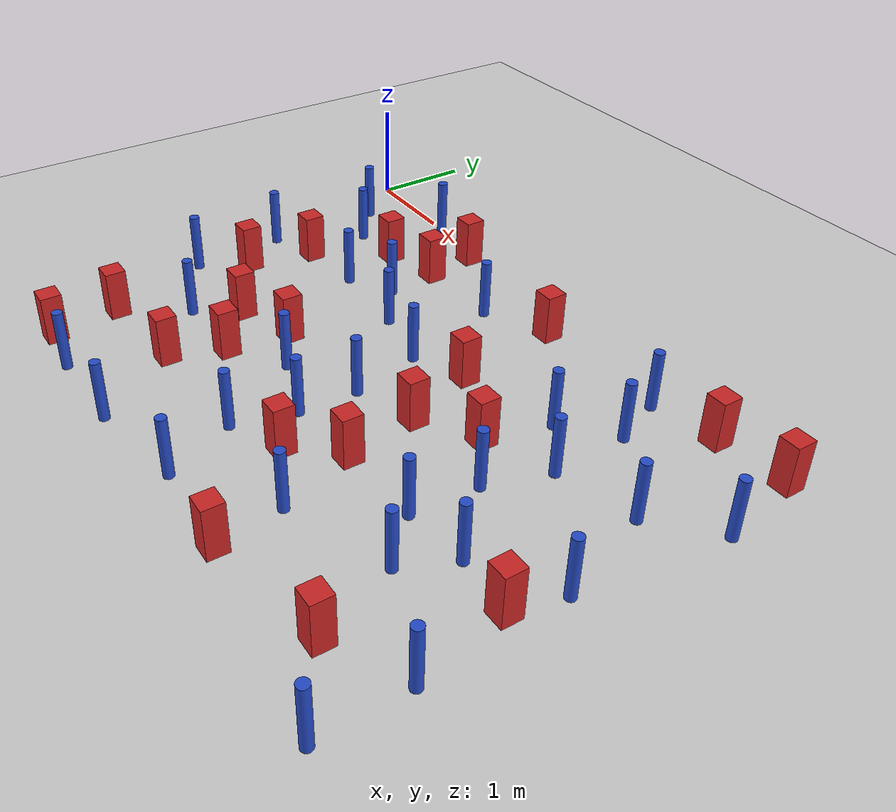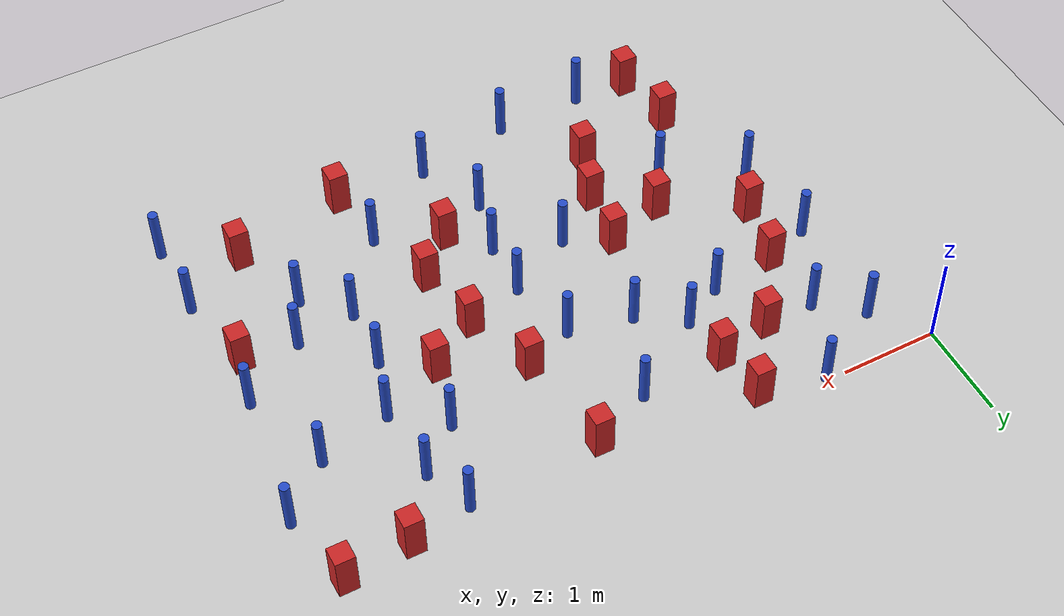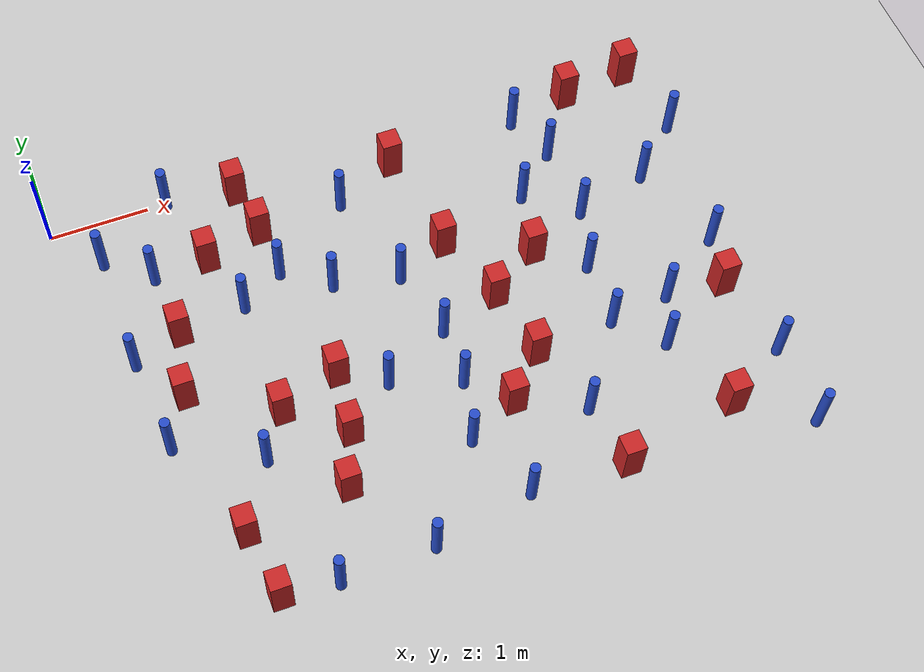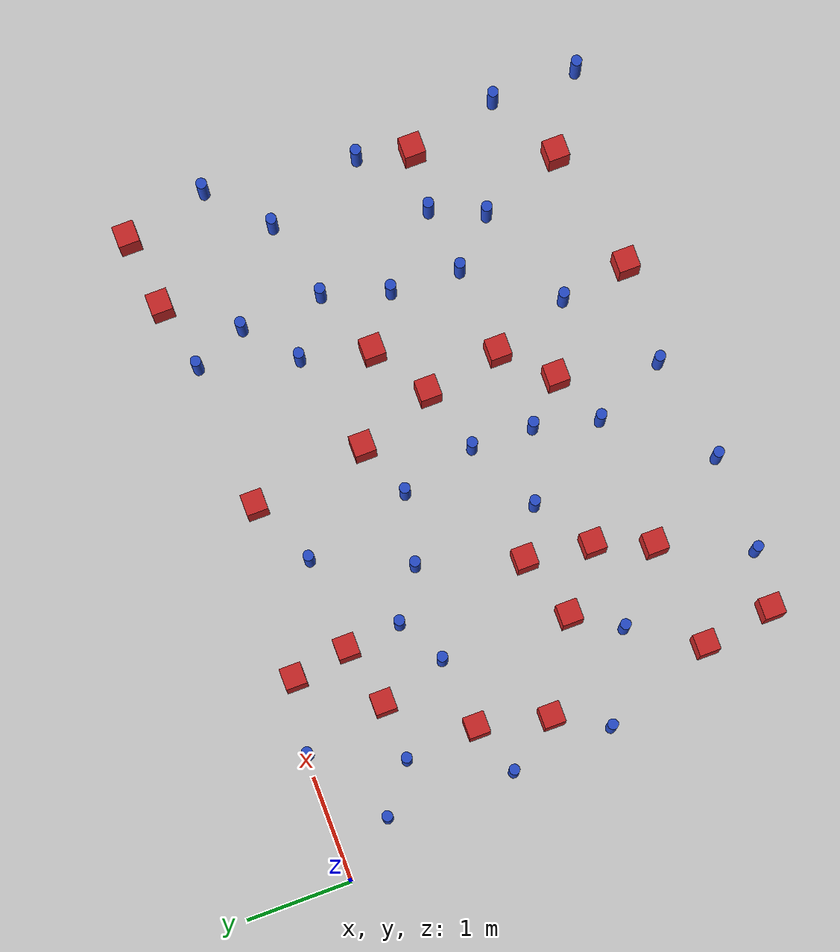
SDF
<sdf version="1.6">
 <world name="default">
  <model name="ground_plane">
   <static>1</static>
   <link name="link">
    <collision name="collision">
     <geometry><plane><normal>0 0 1</normal><size>100 100</size></plane></geometry>
     <surface><friction><ode><mu>100</mu><mu2>50</mu2></ode></friction></surface>
    </collision>
    <visual name="visual">
     <cast_shadows>0</cast_shadows>
     <geometry><plane><normal>0 0 1</normal><size>100 100</size></plane></geometry>
     <material>
      <ambient>1.0 1.0 1.0 1.0</ambient>
      <diffuse>0.8 0.8 0.8 1.0</diffuse>
      <specular>0.01 0.01 0.01 1.000000</specular>
     </material>
    </visual>
   </link>
  </model>
  <model name="square_post_obstacle1">
   <static>true</static>
   <pose>1.39162434271 -0.82237765672 1.91545236811e-07 -7.35059704564e-06 1.12565212e-07 2.39332434364e-05</pose>
   <link name="link">
    <pose>0 0 0.25 0 -0 0</pose>
    <inertial>
     <mass>100</mass>
     <inertia>
      <ixx>0.166667</ixx>
      <ixy>0</ixy>
      <ixz>0</ixz>
      <iyy>0.166667</iyy>
      <iyz>0</iyz>
      <izz>0.166667</izz>
     </inertia>
    </inertial>
    <collision name="collision"><geometry><box><size>.2 .2 .5</size></box></geometry></collision>
    <visual name="visual">
     <geometry><box><size>.2 .2 .5</size></box></geometry>
     <material>
      <script><name>Gazebo/Red</name><uri>file://media/materials/scripts/gazebo.material</uri></script>
     </material>
    </visual>
   </link>
  </model>
  <model name="pole_obstacle4">
   <static>true</static>
   <pose>6.21301074899 -3.66882229229 7.38925637345e-09 -8.47170692798e-08 1.24976764937e-08 -1.74513093023e-07</pose>
   <link name="link">
    <pose>0 0 0.3 0 -0 0</pose>
    <inertial>
     <mass>1</mass>
     <inertia><ixx>0.145833</ixx><ixy>0</ixy><ixz>0</ixz><iyy>0.145833</iyy><iyz>0</iyz><izz>0.125</izz></inertia>
    </inertial>
    <collision name="collision">
     <geometry><cylinder><radius>0.05</radius><length>.6</length></cylinder></geometry>
    </collision>
    <visual name="visual">
     <geometry><cylinder><radius>0.05</radius><length>.6</length></cylinder></geometry>
     <material>
      <script><name>Gazebo/Blue</name><uri>file://media/materials/scripts/gazebo.material</uri></script>
     </material>
    </visual>
   </link>
  </model>
  <model name="square_post_obstacle4">
   <static>true</static>
   <pose>0.98054277704 -4.38491945527 1.91545236811e-07 -7.35059704564e-06 1.12565212e-07 2.39332434364e-05</pose>
   <link name="link">
    <pose>0 0 0.25 0 -0 0</pose>
    <inertial>
     <mass>100</mass>
     <inertia>
      <ixx>0.166667</ixx>
      <ixy>0</ixy>
      <ixz>0</ixz>
      <iyy>0.166667</iyy>
      <iyz>0</iyz>
      <izz>0.166667</izz>
     </inertia>
    </inertial>
    <collision name="collision"><geometry><box><size>.2 .2 .5</size></box></geometry></collision>
    <visual name="visual">
     <geometry><box><size>.2 .2 .5</size></box></geometry>
     <material>
      <script><name>Gazebo/Red</name><uri>file://media/materials/scripts/gazebo.material</uri></script>
     </material>
    </visual>
   </link>
  </model>
  <model name="pole_obstacle7">
   <static>true</static>
   <pose>3.11099969487 -1.66770856473 7.38925637345e-09 -8.471706928e-08 1.24976765152e-08 -1.74513093012e-07</pose>
   <link name="link">
    <pose>0 0 0.3 0 -0 0</pose>
    <inertial>
     <mass>1</mass>
     <inertia><ixx>0.145833</ixx><ixy>0</ixy><ixz>0</ixz><iyy>0.145833</iyy><iyz>0</iyz><izz>0.125</izz></inertia>
    </inertial>
    <collision name="collision">
     <geometry><cylinder><radius>0.05</radius><length>.6</length></cylinder></geometry>
    </collision>
    <visual name="visual">
     <geometry><cylinder><radius>0.05</radius><length>.6</length></cylinder></geometry>
     <material>
      <script><name>Gazebo/Blue</name><uri>file://media/materials/scripts/gazebo.material</uri></script>
     </material>
    </visual>
   </link>
  </model>
  <model name="square_post_obstacle7">
   <static>true</static>
   <pose>6.16536522691 -0.108936220135 1.91545236811e-07 -7.35059704564e-06 1.12565212e-07 2.39332434364e-05</pose>
   <link name="link">
    <pose>0 0 0.25 0 -0 0</pose>
    <inertial>
     <mass>100</mass>
     <inertia>
      <ixx>0.166667</ixx>
      <ixy>0</ixy>
      <ixz>0</ixz>
      <iyy>0.166667</iyy>
      <iyz>0</iyz>
      <izz>0.166667</izz>
     </inertia>
    </inertial>
    <collision name="collision"><geometry><box><size>.2 .2 .5</size></box></geometry></collision>
    <visual name="visual">
     <geometry><box><size>.2 .2 .5</size></box></geometry>
     <material>
      <script><name>Gazebo/Red</name><uri>file://media/materials/scripts/gazebo.material</uri></script>
     </material>
    </visual>
   </link>
  </model>
  <model name="square_post_obstacle12">
   <static>true</static>
   <pose>5.54659777627 -4.02996502234 1.91545236811e-07 -7.35059704564e-06 1.12565212e-07 2.39332434364e-05</pose>
   <link name="link">
    <pose>0 0 0.25 0 -0 0</pose>
    <inertial>
     <mass>100</mass>
     <inertia>
      <ixx>0.166667</ixx>
      <ixy>0</ixy>
      <ixz>0</ixz>
      <iyy>0.166667</iyy>
      <iyz>0</iyz>
      <izz>0.166667</izz>
     </inertia>
    </inertial>
    <collision name="collision"><geometry><box><size>.2 .2 .5</size></box></geometry></collision>
    <visual name="visual">
     <geometry><box><size>.2 .2 .5</size></box></geometry>
     <material>
      <script><name>Gazebo/Red</name><uri>file://media/materials/scripts/gazebo.material</uri></script>
     </material>
    </visual>
   </link>
  </model>
  <model name="pole_obstacle18">
   <static>true</static>
   <pose>6.14882844056 -2.31937417881 7.38925637345e-09 -8.47170692798e-08 1.24976764937e-08 -1.74513093023e-07</pose>
   <link name="link">
    <pose>0 0 0.3 0 -0 0</pose>
    <inertial>
     <mass>1</mass>
     <inertia><ixx>0.145833</ixx><ixy>0</ixy><ixz>0</ixz><iyy>0.145833</iyy><iyz>0</iyz><izz>0.125</izz></inertia>
    </inertial>
    <collision name="collision">
     <geometry><cylinder><radius>0.05</radius><length>.6</length></cylinder></geometry>
    </collision>
    <visual name="visual">
     <geometry><cylinder><radius>0.05</radius><length>.6</length></cylinder></geometry>
     <material>
      <script><name>Gazebo/Blue</name><uri>file://media/materials/scripts/gazebo.material</uri></script>
     </material>
    </visual>
   </link>
  </model>
  <model name="square_post_obstacle14">
   <static>true</static>
   <pose>5.47820573475 -0.178806485754 1.91545236811e-07 -7.35059704564e-06 1.12565212e-07 2.39332434364e-05</pose>
   <link name="link">
    <pose>0 0 0.25 0 -0 0</pose>
    <inertial>
     <mass>100</mass>
     <inertia>
      <ixx>0.166667</ixx>
      <ixy>0</ixy>
      <ixz>0</ixz>
      <iyy>0.166667</iyy>
      <iyz>0</iyz>
      <izz>0.166667</izz>
     </inertia>
    </inertial>
    <collision name="collision"><geometry><box><size>.2 .2 .5</size></box></geometry></collision>
    <visual name="visual">
     <geometry><box><size>.2 .2 .5</size></box></geometry>
     <material>
      <script><name>Gazebo/Red</name><uri>file://media/materials/scripts/gazebo.material</uri></script>
     </material>
    </visual>
   </link>
  </model>
  <model name="pole_obstacle19">
   <static>true</static>
   <pose>5.4659101651 -2.76664875907 7.38925637345e-09 -8.47170692798e-08 1.24976764937e-08 -1.74513093023e-07</pose>
   <link name="link">
    <pose>0 0 0.3 0 -0 0</pose>
    <inertial>
     <mass>1</mass>
     <inertia><ixx>0.145833</ixx><ixy>0</ixy><ixz>0</ixz><iyy>0.145833</iyy><iyz>0</iyz><izz>0.125</izz></inertia>
    </inertial>
    <collision name="collision">
     <geometry><cylinder><radius>0.05</radius><length>.6</length></cylinder></geometry>
    </collision>
    <visual name="visual">
     <geometry><cylinder><radius>0.05</radius><length>.6</length></cylinder></geometry>
     <material>
      <script><name>Gazebo/Blue</name><uri>file://media/materials/scripts/gazebo.material</uri></script>
     </material>
    </visual>
   </link>
  </model>
  <model name="square_post_obstacle16">
   <static>true</static>
   <pose>3.63317559832 -1.45241248531 1.91545236811e-07 -7.35059704564e-06 1.12565212e-07 2.39332434364e-05</pose>
   <link name="link">
    <pose>0 0 0.25 0 -0 0</pose>
    <inertial>
     <mass>100</mass>
     <inertia>
      <ixx>0.166667</ixx>
      <ixy>0</ixy>
      <ixz>0</ixz>
      <iyy>0.166667</iyy>
      <iyz>0</iyz>
      <izz>0.166667</izz>
     </inertia>
    </inertial>
    <collision name="collision"><geometry><box><size>.2 .2 .5</size></box></geometry></collision>
    <visual name="visual">
     <geometry><box><size>.2 .2 .5</size></box></geometry>
     <material>
      <script><name>Gazebo/Red</name><uri>file://media/materials/scripts/gazebo.material</uri></script>
     </material>
    </visual>
   </link>
  </model>
  <model name="pole_obstacle31">
   <static>true</static>
   <pose>1.19716872186 -0.0291120854085 7.38925637345e-09 -8.47170692799e-08 1.24976764983e-08 -1.74513093021e-07</pose>
   <link name="link">
    <pose>0 0 0.3 0 -0 0</pose>
    <inertial>
     <mass>1</mass>
     <inertia><ixx>0.145833</ixx><ixy>0</ixy><ixz>0</ixz><iyy>0.145833</iyy><iyz>0</iyz><izz>0.125</izz></inertia>
    </inertial>
    <collision name="collision">
     <geometry><cylinder><radius>0.05</radius><length>.6</length></cylinder></geometry>
    </collision>
    <visual name="visual">
     <geometry><cylinder><radius>0.05</radius><length>.6</length></cylinder></geometry>
     <material>
      <script><name>Gazebo/Blue</name><uri>file://media/materials/scripts/gazebo.material</uri></script>
     </material>
    </visual>
   </link>
  </model>
  <model name="square_post_obstacle29">
   <static>true</static>
   <pose>4.02702518883 -2.90242807196 1.91545236811e-07 -7.35059704564e-06 1.12565212e-07 2.39332434364e-05</pose>
   <link name="link">
    <pose>0 0 0.25 0 -0 0</pose>
    <inertial>
     <mass>100</mass>
     <inertia>
      <ixx>0.166667</ixx>
      <ixy>0</ixy>
      <ixz>0</ixz>
      <iyy>0.166667</iyy>
      <iyz>0</iyz>
      <izz>0.166667</izz>
     </inertia>
    </inertial>
    <collision name="collision"><geometry><box><size>.2 .2 .5</size></box></geometry></collision>
    <visual name="visual">
     <geometry><box><size>.2 .2 .5</size></box></geometry>
     <material>
      <script><name>Gazebo/Red</name><uri>file://media/materials/scripts/gazebo.material</uri></script>
     </material>
    </visual>
   </link>
  </model>
  <model name="pole_obstacle38">
   <static>true</static>
   <pose>3.43052364352 -4.2351031956 7.38925637345e-09 -8.47170692798e-08 1.24976765033e-08 -1.74513093019e-07</pose>
   <link name="link">
    <pose>0 0 0.3 0 -0 0</pose>
    <inertial>
     <mass>1</mass>
     <inertia><ixx>0.145833</ixx><ixy>0</ixy><ixz>0</ixz><iyy>0.145833</iyy><iyz>0</iyz><izz>0.125</izz></inertia>
    </inertial>
    <collision name="collision">
     <geometry><cylinder><radius>0.05</radius><length>.6</length></cylinder></geometry>
    </collision>
    <visual name="visual">
     <geometry><cylinder><radius>0.05</radius><length>.6</length></cylinder></geometry>
     <material>
      <script><name>Gazebo/Blue</name><uri>file://media/materials/scripts/gazebo.material</uri></script>
     </material>
    </visual>
   </link>
  </model>
  <model name="pole_obstacle49">
   <static>true</static>
   <pose>3.1206516732 -3.55467923698 7.38925637345e-09 -8.47170692798e-08 1.24976764939e-08 -1.74513093025e-07</pose>
   <link name="link">
    <pose>0 0 0.3 0 -0 0</pose>
    <inertial>
     <mass>1</mass>
     <inertia><ixx>0.145833</ixx><ixy>0</ixy><ixz>0</ixz><iyy>0.145833</iyy><iyz>0</iyz><izz>0.125</izz></inertia>
    </inertial>
    <collision name="collision">
     <geometry><cylinder><radius>0.05</radius><length>.6</length></cylinder></geometry>
    </collision>
    <visual name="visual">
     <geometry><cylinder><radius>0.05</radius><length>.6</length></cylinder></geometry>
     <material>
      <script><name>Gazebo/Blue</name><uri>file://media/materials/scripts/gazebo.material</uri></script>
     </material>
    </visual>
   </link>
  </model>
  <model name="pole_obstacle53">
   <static>true</static>
   <pose>6.34267676839 -0.906663476969 7.38925637345e-09 -8.47170692799e-08 1.24976765038e-08 -1.74513093018e-07</pose>
   <link name="link">
    <pose>0 0 0.3 0 -0 0</pose>
    <inertial>
     <mass>1</mass>
     <inertia><ixx>0.145833</ixx><ixy>0</ixy><ixz>0</ixz><iyy>0.145833</iyy><iyz>0</iyz><izz>0.125</izz></inertia>
    </inertial>
    <collision name="collision">
     <geometry><cylinder><radius>0.05</radius><length>.6</length></cylinder></geometry>
    </collision>
    <visual name="visual">
     <geometry><cylinder><radius>0.05</radius><length>.6</length></cylinder></geometry>
     <material>
      <script><name>Gazebo/Blue</name><uri>file://media/materials/scripts/gazebo.material</uri></script>
     </material>
    </visual>
   </link>
  </model>
  <model name="pole_obstacle54">
   <static>true</static>
   <pose>6.21742755549 -4.4783017503 7.38925637345e-09 -8.47170692796e-08 1.24976764786e-08 -1.74513093032e-07</pose>
   <link name="link">
    <pose>0 0 0.3 0 -0 0</pose>
    <inertial>
     <mass>1</mass>
     <inertia><ixx>0.145833</ixx><ixy>0</ixy><ixz>0</ixz><iyy>0.145833</iyy><iyz>0</iyz><izz>0.125</izz></inertia>
    </inertial>
    <collision name="collision">
     <geometry><cylinder><radius>0.05</radius><length>.6</length></cylinder></geometry>
    </collision>
    <visual name="visual">
     <geometry><cylinder><radius>0.05</radius><length>.6</length></cylinder></geometry>
     <material>
      <script><name>Gazebo/Blue</name><uri>file://media/materials/scripts/gazebo.material</uri></script>
     </material>
    </visual>
   </link>
  </model>
  <model name="pole_obstacle55">
   <static>true</static>
   <pose>1.57603445766 -1.45517046382 7.38925637345e-09 -8.471706928e-08 1.24976765079e-08 -1.74513093017e-07</pose>
   <link name="link">
    <pose>0 0 0.3 0 -0 0</pose>
    <inertial>
     <mass>1</mass>
     <inertia><ixx>0.145833</ixx><ixy>0</ixy><ixz>0</ixz><iyy>0.145833</iyy><iyz>0</iyz><izz>0.125</izz></inertia>
    </inertial>
    <collision name="collision">
     <geometry><cylinder><radius>0.05</radius><length>.6</length></cylinder></geometry>
    </collision>
    <visual name="visual">
     <geometry><cylinder><radius>0.05</radius><length>.6</length></cylinder></geometry>
     <material>
      <script><name>Gazebo/Blue</name><uri>file://media/materials/scripts/gazebo.material</uri></script>
     </material>
    </visual>
   </link>
  </model>
  <model name="pole_obstacle60">
   <static>true</static>
   <pose>4.83979357962 -0.304419016083 7.38925637345e-09 -8.47170692798e-08 1.24976765003e-08 -1.7451309302e-07</pose>
   <link name="link">
    <pose>0 0 0.3 0 -0 0</pose>
    <inertial>
     <mass>1</mass>
     <inertia><ixx>0.145833</ixx><ixy>0</ixy><ixz>0</ixz><iyy>0.145833</iyy><iyz>0</iyz><izz>0.125</izz></inertia>
    </inertial>
    <collision name="collision">
     <geometry><cylinder><radius>0.05</radius><length>.6</length></cylinder></geometry>
    </collision>
    <visual name="visual">
     <geometry><cylinder><radius>0.05</radius><length>.6</length></cylinder></geometry>
     <material>
      <script><name>Gazebo/Blue</name><uri>file://media/materials/scripts/gazebo.material</uri></script>
     </material>
    </visual>
   </link>
  </model>
  <model name="pole_obstacle63">
   <static>true</static>
   <pose>2.45991496162 -1.52281039656 7.38925637345e-09 -8.471706928e-08 1.24976765152e-08 -1.74513093012e-07</pose>
   <link name="link">
    <pose>0 0 0.3 0 -0 0</pose>
    <inertial>
     <mass>1</mass>
     <inertia><ixx>0.145833</ixx><ixy>0</ixy><ixz>0</ixz><iyy>0.145833</iyy><iyz>0</iyz><izz>0.125</izz></inertia>
    </inertial>
    <collision name="collision">
     <geometry><cylinder><radius>0.05</radius><length>.6</length></cylinder></geometry>
    </collision>
    <visual name="visual">
     <geometry><cylinder><radius>0.05</radius><length>.6</length></cylinder></geometry>
     <material>
      <script><name>Gazebo/Blue</name><uri>file://media/materials/scripts/gazebo.material</uri></script>
     </material>
    </visual>
   </link>
  </model>
  <model name="square_post_obstacle61">
   <static>true</static>
   <pose>3.4747343829 -0.357665982241 1.91545236811e-07 -7.35059704564e-06 1.12565212e-07 2.39332434364e-05</pose>
   <link name="link">
    <pose>0 0 0.25 0 -0 0</pose>
    <inertial>
     <mass>100</mass>
     <inertia>
      <ixx>0.166667</ixx>
      <ixy>0</ixy>
      <ixz>0</ixz>
      <iyy>0.166667</iyy>
      <iyz>0</iyz>
      <izz>0.166667</izz>
     </inertia>
    </inertial>
    <collision name="collision"><geometry><box><size>.2 .2 .5</size></box></geometry></collision>
    <visual name="visual">
     <geometry><box><size>.2 .2 .5</size></box></geometry>
     <material>
      <script><name>Gazebo/Red</name><uri>file://media/materials/scripts/gazebo.material</uri></script>
     </material>
    </visual>
   </link>
  </model>
  <model name="square_post_obstacle66">
   <static>true</static>
   <pose>1.88418089391 -0.146670153763 1.91545236811e-07 -7.35059704564e-06 1.12565212e-07 2.39332434364e-05</pose>
   <link name="link">
    <pose>0 0 0.25 0 -0 0</pose>
    <inertial>
     <mass>100</mass>
     <inertia>
      <ixx>0.166667</ixx>
      <ixy>0</ixy>
      <ixz>0</ixz>
      <iyy>0.166667</iyy>
      <iyz>0</iyz>
      <izz>0.166667</izz>
     </inertia>
    </inertial>
    <collision name="collision"><geometry><box><size>.2 .2 .5</size></box></geometry></collision>
    <visual name="visual">
     <geometry><box><size>.2 .2 .5</size></box></geometry>
     <material>
      <script><name>Gazebo/Red</name><uri>file://media/materials/scripts/gazebo.material</uri></script>
     </material>
    </visual>
   </link>
  </model>
  <model name="square_post_obstacle80">
   <static>true</static>
   <pose>1.96997656461 -0.683426945954 1.91545236811e-07 -7.35059704564e-06 1.12565212e-07 2.39332434364e-05</pose>
   <link name="link">
    <pose>0 0 0.25 0 -0 0</pose>
    <inertial>
     <mass>100</mass>
     <inertia>
      <ixx>0.166667</ixx>
      <ixy>0</ixy>
      <ixz>0</ixz>
      <iyy>0.166667</iyy>
      <iyz>0</iyz>
      <izz>0.166667</izz>
     </inertia>
    </inertial>
    <collision name="collision"><geometry><box><size>.2 .2 .5</size></box></geometry></collision>
    <visual name="visual">
     <geometry><box><size>.2 .2 .5</size></box></geometry>
     <material>
      <script><name>Gazebo/Red</name><uri>file://media/materials/scripts/gazebo.material</uri></script>
     </material>
    </visual>
   </link>
  </model>
  <model name="pole_obstacle97">
   <static>true</static>
   <pose>1.51831628675 -4.44968252284 7.38925637345e-09 -8.47170692799e-08 1.24976765033e-08 -1.74513093018e-07</pose>
   <link name="link">
    <pose>0 0 0.3 0 -0 0</pose>
    <inertial>
     <mass>1</mass>
     <inertia><ixx>0.145833</ixx><ixy>0</ixy><ixz>0</ixz><iyy>0.145833</iyy><iyz>0</iyz><izz>0.125</izz></inertia>
    </inertial>
    <collision name="collision">
     <geometry><cylinder><radius>0.05</radius><length>.6</length></cylinder></geometry>
    </collision>
    <visual name="visual">
     <geometry><cylinder><radius>0.05</radius><length>.6</length></cylinder></geometry>
     <material>
      <script><name>Gazebo/Blue</name><uri>file://media/materials/scripts/gazebo.material</uri></script>
     </material>
    </visual>
   </link>
  </model>
  <model name="pole_obstacle99">
   <static>true</static>
   <pose>5.03523945167 -0.800778320037 7.38925637345e-09 -8.47170692799e-08 1.24976765038e-08 -1.74513093018e-07</pose>
   <link name="link">
    <pose>0 0 0.3 0 -0 0</pose>
    <inertial>
     <mass>1</mass>
     <inertia><ixx>0.145833</ixx><ixy>0</ixy><ixz>0</ixz><iyy>0.145833</iyy><iyz>0</iyz><izz>0.125</izz></inertia>
    </inertial>
    <collision name="collision">
     <geometry><cylinder><radius>0.05</radius><length>.6</length></cylinder></geometry>
    </collision>
    <visual name="visual">
     <geometry><cylinder><radius>0.05</radius><length>.6</length></cylinder></geometry>
     <material>
      <script><name>Gazebo/Blue</name><uri>file://media/materials/scripts/gazebo.material</uri></script>
     </material>
    </visual>
   </link>
  </model>
  <model name="pole_obstacle105">
   <static>true</static>
   <pose>4.88165282099 -2.1868227286 7.38925637345e-09 -8.47170692798e-08 1.24976764937e-08 -1.74513093023e-07</pose>
   <link name="link">
    <pose>0 0 0.3 0 -0 0</pose>
    <inertial>
     <mass>1</mass>
     <inertia><ixx>0.145833</ixx><ixy>0</ixy><ixz>0</ixz><iyy>0.145833</iyy><iyz>0</iyz><izz>0.125</izz></inertia>
    </inertial>
    <collision name="collision">
     <geometry><cylinder><radius>0.05</radius><length>.6</length></cylinder></geometry>
    </collision>
    <visual name="visual">
     <geometry><cylinder><radius>0.05</radius><length>.6</length></cylinder></geometry>
     <material>
      <script><name>Gazebo/Blue</name><uri>file://media/materials/scripts/gazebo.material</uri></script>
     </material>
    </visual>
   </link>
  </model>
  <model name="square_post_obstacle101">
   <static>true</static>
   <pose>2.16774419535 -2.46557485314 1.91545236811e-07 -7.35059704564e-06 1.12565212e-07 2.39332434364e-05</pose>
   <link name="link">
    <pose>0 0 0.25 0 -0 0</pose>
    <inertial>
     <mass>100</mass>
     <inertia>
      <ixx>0.166667</ixx>
      <ixy>0</ixy>
      <ixz>0</ixz>
      <iyy>0.166667</iyy>
      <iyz>0</iyz>
      <izz>0.166667</izz>
     </inertia>
    </inertial>
    <collision name="collision"><geometry><box><size>.2 .2 .5</size></box></geometry></collision>
    <visual name="visual">
     <geometry><box><size>.2 .2 .5</size></box></geometry>
     <material>
      <script><name>Gazebo/Red</name><uri>file://media/materials/scripts/gazebo.material</uri></script>
     </material>
    </visual>
   </link>
  </model>
  <model name="square_post_obstacle102">
   <static>true</static>
   <pose>4.37271973325 -4.26999775828 1.91545236811e-07 -7.35059704564e-06 1.12565212e-07 2.39332434364e-05</pose>
   <link name="link">
    <pose>0 0 0.25 0 -0 0</pose>
    <inertial>
     <mass>100</mass>
     <inertia>
      <ixx>0.166667</ixx>
      <ixy>0</ixy>
      <ixz>0</ixz>
      <iyy>0.166667</iyy>
      <iyz>0</iyz>
      <izz>0.166667</izz>
     </inertia>
    </inertial>
    <collision name="collision"><geometry><box><size>.2 .2 .5</size></box></geometry></collision>
    <visual name="visual">
     <geometry><box><size>.2 .2 .5</size></box></geometry>
     <material>
      <script><name>Gazebo/Red</name><uri>file://media/materials/scripts/gazebo.material</uri></script>
     </material>
    </visual>
   </link>
  </model>
  <model name="pole_obstacle109">
   <static>true</static>
   <pose>5.24906230613 -3.24952499677 7.38925637345e-09 -8.47170692798e-08 1.24976764937e-08 -1.74513093023e-07</pose>
   <link name="link">
    <pose>0 0 0.3 0 -0 0</pose>
    <inertial>
     <mass>1</mass>
     <inertia><ixx>0.145833</ixx><ixy>0</ixy><ixz>0</ixz><iyy>0.145833</iyy><iyz>0</iyz><izz>0.125</izz></inertia>
    </inertial>
    <collision name="collision">
     <geometry><cylinder><radius>0.05</radius><length>.6</length></cylinder></geometry>
    </collision>
    <visual name="visual">
     <geometry><cylinder><radius>0.05</radius><length>.6</length></cylinder></geometry>
     <material>
      <script><name>Gazebo/Blue</name><uri>file://media/materials/scripts/gazebo.material</uri></script>
     </material>
    </visual>
   </link>
  </model>
  <model name="pole_obstacle113">
   <static>true</static>
   <pose>2.43448214372 -4.4206593492 7.38925637345e-09 -8.47170692798e-08 1.24976765033e-08 -1.74513093019e-07</pose>
   <link name="link">
    <pose>0 0 0.3 0 -0 0</pose>
    <inertial>
     <mass>1</mass>
     <inertia><ixx>0.145833</ixx><ixy>0</ixy><ixz>0</ixz><iyy>0.145833</iyy><iyz>0</iyz><izz>0.125</izz></inertia>
    </inertial>
    <collision name="collision">
     <geometry><cylinder><radius>0.05</radius><length>.6</length></cylinder></geometry>
    </collision>
    <visual name="visual">
     <geometry><cylinder><radius>0.05</radius><length>.6</length></cylinder></geometry>
     <material>
      <script><name>Gazebo/Blue</name><uri>file://media/materials/scripts/gazebo.material</uri></script>
     </material>
    </visual>
   </link>
  </model>
  <model name="square_post_obstacle115">
   <static>true</static>
   <pose>4.4288843318 -1.84010217304 1.91545236811e-07 -7.35059704564e-06 1.12565212e-07 2.39332434364e-05</pose>
   <link name="link">
    <pose>0 0 0.25 0 -0 0</pose>
    <inertial>
     <mass>100</mass>
     <inertia>
      <ixx>0.166667</ixx>
      <ixy>0</ixy>
      <ixz>0</ixz>
      <iyy>0.166667</iyy>
      <iyz>0</iyz>
      <izz>0.166667</izz>
     </inertia>
    </inertial>
    <collision name="collision"><geometry><box><size>.2 .2 .5</size></box></geometry></collision>
    <visual name="visual">
     <geometry><box><size>.2 .2 .5</size></box></geometry>
     <material>
      <script><name>Gazebo/Red</name><uri>file://media/materials/scripts/gazebo.material</uri></script>
     </material>
    </visual>
   </link>
  </model>
  <model name="square_post_obstacle118">
   <static>true</static>
   <pose>3.89928428555 -2.18130913536 1.91545236811e-07 -7.35059704564e-06 1.12565212e-07 2.39332434364e-05</pose>
   <link name="link">
    <pose>0 0 0.25 0 -0 0</pose>
    <inertial>
     <mass>100</mass>
     <inertia>
      <ixx>0.166667</ixx>
      <ixy>0</ixy>
      <ixz>0</ixz>
      <iyy>0.166667</iyy>
      <iyz>0</iyz>
      <izz>0.166667</izz>
     </inertia>
    </inertial>
    <collision name="collision"><geometry><box><size>.2 .2 .5</size></box></geometry></collision>
    <visual name="visual">
     <geometry><box><size>.2 .2 .5</size></box></geometry>
     <material>
      <script><name>Gazebo/Red</name><uri>file://media/materials/scripts/gazebo.material</uri></script>
     </material>
    </visual>
   </link>
  </model>
  <model name="pole_obstacle128">
   <static>true</static>
   <pose>5.82194822113 -1.38647930854 7.38925637345e-09 -8.471706928e-08 1.24976765134e-08 -1.74513093015e-07</pose>
   <link name="link">
    <pose>0 0 0.3 0 -0 0</pose>
    <inertial>
     <mass>1</mass>
     <inertia><ixx>0.145833</ixx><ixy>0</ixy><ixz>0</ixz><iyy>0.145833</iyy><iyz>0</iyz><izz>0.125</izz></inertia>
    </inertial>
    <collision name="collision">
     <geometry><cylinder><radius>0.05</radius><length>.6</length></cylinder></geometry>
    </collision>
    <visual name="visual">
     <geometry><cylinder><radius>0.05</radius><length>.6</length></cylinder></geometry>
     <material>
      <script><name>Gazebo/Blue</name><uri>file://media/materials/scripts/gazebo.material</uri></script>
     </material>
    </visual>
   </link>
  </model>
  <model name="pole_obstacle129">
   <static>true</static>
   <pose>5.07312598892 -1.5771109951 7.38925637345e-09 -8.471706928e-08 1.24976765134e-08 -1.74513093015e-07</pose>
   <link name="link">
    <pose>0 0 0.3 0 -0 0</pose>
    <inertial>
     <mass>1</mass>
     <inertia><ixx>0.145833</ixx><ixy>0</ixy><ixz>0</ixz><iyy>0.145833</iyy><iyz>0</iyz><izz>0.125</izz></inertia>
    </inertial>
    <collision name="collision">
     <geometry><cylinder><radius>0.05</radius><length>.6</length></cylinder></geometry>
    </collision>
    <visual name="visual">
     <geometry><cylinder><radius>0.05</radius><length>.6</length></cylinder></geometry>
     <material>
      <script><name>Gazebo/Blue</name><uri>file://media/materials/scripts/gazebo.material</uri></script>
     </material>
    </visual>
   </link>
  </model>
  <model name="pole_obstacle135">
   <static>true</static>
   <pose>2.60040295639 -2.72342633934 7.38925637345e-09 -8.47170692798e-08 1.24976764939e-08 -1.74513093025e-07</pose>
   <link name="link">
    <pose>0 0 0.3 0 -0 0</pose>
    <inertial>
     <mass>1</mass>
     <inertia><ixx>0.145833</ixx><ixy>0</ixy><ixz>0</ixz><iyy>0.145833</iyy><iyz>0</iyz><izz>0.125</izz></inertia>
    </inertial>
    <collision name="collision">
     <geometry><cylinder><radius>0.05</radius><length>.6</length></cylinder></geometry>
    </collision>
    <visual name="visual">
     <geometry><cylinder><radius>0.05</radius><length>.6</length></cylinder></geometry>
     <material>
      <script><name>Gazebo/Blue</name><uri>file://media/materials/scripts/gazebo.material</uri></script>
     </material>
    </visual>
   </link>
  </model>
  <model name="square_post_obstacle134">
   <static>true</static>
   <pose>0.755613466114 -2.19465964256 1.91545236811e-07 -7.35059704564e-06 1.12565212e-07 2.39332434364e-05</pose>
   <link name="link">
    <pose>0 0 0.25 0 -0 0</pose>
    <inertial>
     <mass>100</mass>
     <inertia>
      <ixx>0.166667</ixx>
      <ixy>0</ixy>
      <ixz>0</ixz>
      <iyy>0.166667</iyy>
      <iyz>0</iyz>
      <izz>0.166667</izz>
     </inertia>
    </inertial>
    <collision name="collision"><geometry><box><size>.2 .2 .5</size></box></geometry></collision>
    <visual name="visual">
     <geometry><box><size>.2 .2 .5</size></box></geometry>
     <material>
      <script><name>Gazebo/Red</name><uri>file://media/materials/scripts/gazebo.material</uri></script>
     </material>
    </visual>
   </link>
  </model>
  <model name="square_post_obstacle139">
   <static>true</static>
   <pose>6.02944621977 -2.81660112354 1.91545236811e-07 -7.35059704564e-06 1.12565212e-07 2.39332434364e-05</pose>
   <link name="link">
    <pose>0 0 0.25 0 -0 0</pose>
    <inertial>
     <mass>100</mass>
     <inertia>
      <ixx>0.166667</ixx>
      <ixy>0</ixy>
      <ixz>0</ixz>
      <iyy>0.166667</iyy>
      <iyz>0</iyz>
      <izz>0.166667</izz>
     </inertia>
    </inertial>
    <collision name="collision"><geometry><box><size>.2 .2 .5</size></box></geometry></collision>
    <visual name="visual">
     <geometry><box><size>.2 .2 .5</size></box></geometry>
     <material>
      <script><name>Gazebo/Red</name><uri>file://media/materials/scripts/gazebo.material</uri></script>
     </material>
    </visual>
   </link>
  </model>
  <model name="pole_obstacle147">
   <static>true</static>
   <pose>3.28701109732 -2.37774849787 7.38925637345e-09 -8.47170692798e-08 1.24976764939e-08 -1.74513093025e-07</pose>
   <link name="link">
    <pose>0 0 0.3 0 -0 0</pose>
    <inertial>
     <mass>1</mass>
     <inertia><ixx>0.145833</ixx><ixy>0</ixy><ixz>0</ixz><iyy>0.145833</iyy><iyz>0</iyz><izz>0.125</izz></inertia>
    </inertial>
    <collision name="collision">
     <geometry><cylinder><radius>0.05</radius><length>.6</length></cylinder></geometry>
    </collision>
    <visual name="visual">
     <geometry><cylinder><radius>0.05</radius><length>.6</length></cylinder></geometry>
     <material>
      <script><name>Gazebo/Blue</name><uri>file://media/materials/scripts/gazebo.material</uri></script>
     </material>
    </visual>
   </link>
  </model>
  <model name="square_post_obstacle143">
   <static>true</static>
   <pose>0.879864512447 -3.71972751184 1.91545236811e-07 -7.35059704564e-06 1.12565212e-07 2.39332434364e-05</pose>
   <link name="link">
    <pose>0 0 0.25 0 -0 0</pose>
    <inertial>
     <mass>100</mass>
     <inertia>
      <ixx>0.166667</ixx>
      <ixy>0</ixy>
      <ixz>0</ixz>
      <iyy>0.166667</iyy>
      <iyz>0</iyz>
      <izz>0.166667</izz>
     </inertia>
    </inertial>
    <collision name="collision"><geometry><box><size>.2 .2 .5</size></box></geometry></collision>
    <visual name="visual">
     <geometry><box><size>.2 .2 .5</size></box></geometry>
     <material>
      <script><name>Gazebo/Red</name><uri>file://media/materials/scripts/gazebo.material</uri></script>
     </material>
    </visual>
   </link>
  </model>
  <model name="pole_obstacle152">
   <static>true</static>
   <pose>0.408941831926 -1.70653253844 7.38925637345e-09 -8.47170692798e-08 1.24976765025e-08 -1.74513093018e-07</pose>
   <link name="link">
    <pose>0 0 0.3 0 -0 0</pose>
    <inertial>
     <mass>1</mass>
     <inertia><ixx>0.145833</ixx><ixy>0</ixy><ixz>0</ixz><iyy>0.145833</iyy><iyz>0</iyz><izz>0.125</izz></inertia>
    </inertial>
    <collision name="collision">
     <geometry><cylinder><radius>0.05</radius><length>.6</length></cylinder></geometry>
    </collision>
    <visual name="visual">
     <geometry><cylinder><radius>0.05</radius><length>.6</length></cylinder></geometry>
     <material>
      <script><name>Gazebo/Blue</name><uri>file://media/materials/scripts/gazebo.material</uri></script>
     </material>
    </visual>
   </link>
  </model>
  <model name="pole_obstacle153">
   <static>true</static>
   <pose>3.26833079432 -2.95889070544 7.38925637345e-09 -8.47170692798e-08 1.24976764939e-08 -1.74513093025e-07</pose>
   <link name="link">
    <pose>0 0 0.3 0 -0 0</pose>
    <inertial>
     <mass>1</mass>
     <inertia><ixx>0.145833</ixx><ixy>0</ixy><ixz>0</ixz><iyy>0.145833</iyy><iyz>0</iyz><izz>0.125</izz></inertia>
    </inertial>
    <collision name="collision">
     <geometry><cylinder><radius>0.05</radius><length>.6</length></cylinder></geometry>
    </collision>
    <visual name="visual">
     <geometry><cylinder><radius>0.05</radius><length>.6</length></cylinder></geometry>
     <material>
      <script><name>Gazebo/Blue</name><uri>file://media/materials/scripts/gazebo.material</uri></script>
     </material>
    </visual>
   </link>
  </model>
  <model name="pole_obstacle156">
   <static>true</static>
   <pose>0.415216468877 -0.502353403063 7.38925637345e-09 -8.47170692799e-08 1.24976765007e-08 -1.74513093021e-07</pose>
   <link name="link">
    <pose>0 0 0.3 0 -0 0</pose>
    <inertial>
     <mass>1</mass>
     <inertia><ixx>0.145833</ixx><ixy>0</ixy><ixz>0</ixz><iyy>0.145833</iyy><iyz>0</iyz><izz>0.125</izz></inertia>
    </inertial>
    <collision name="collision">
     <geometry><cylinder><radius>0.05</radius><length>.6</length></cylinder></geometry>
    </collision>
    <visual name="visual">
     <geometry><cylinder><radius>0.05</radius><length>.6</length></cylinder></geometry>
     <material>
      <script><name>Gazebo/Blue</name><uri>file://media/materials/scripts/gazebo.material</uri></script>
     </material>
    </visual>
   </link>
  </model>
  <model name="pole_obstacle158">
   <static>true</static>
   <pose>0.843283935864 -0.844563160505 7.38925637345e-09 -8.47170692799e-08 1.24976765008e-08 -1.7451309302e-07</pose>
   <link name="link">
    <pose>0 0 0.3 0 -0 0</pose>
    <inertial>
     <mass>1</mass>
     <inertia><ixx>0.145833</ixx><ixy>0</ixy><ixz>0</ixz><iyy>0.145833</iyy><iyz>0</iyz><izz>0.125</izz></inertia>
    </inertial>
    <collision name="collision">
     <geometry><cylinder><radius>0.05</radius><length>.6</length></cylinder></geometry>
    </collision>
    <visual name="visual">
     <geometry><cylinder><radius>0.05</radius><length>.6</length></cylinder></geometry>
     <material>
      <script><name>Gazebo/Blue</name><uri>file://media/materials/scripts/gazebo.material</uri></script>
     </material>
    </visual>
   </link>
  </model>
  <model name="pole_obstacle163">
   <static>true</static>
   <pose>4.27032904429 -3.62812125369 7.38925637345e-09 -8.47170692798e-08 1.24976764937e-08 -1.74513093023e-07</pose>
   <link name="link">
    <pose>0 0 0.3 0 -0 0</pose>
    <inertial>
     <mass>1</mass>
     <inertia><ixx>0.145833</ixx><ixy>0</ixy><ixz>0</ixz><iyy>0.145833</iyy><iyz>0</iyz><izz>0.125</izz></inertia>
    </inertial>
    <collision name="collision">
     <geometry><cylinder><radius>0.05</radius><length>.6</length></cylinder></geometry>
    </collision>
    <visual name="visual">
     <geometry><cylinder><radius>0.05</radius><length>.6</length></cylinder></geometry>
     <material>
      <script><name>Gazebo/Blue</name><uri>file://media/materials/scripts/gazebo.material</uri></script>
     </material>
    </visual>
   </link>
  </model>
  <model name="pole_obstacle164">
   <static>true</static>
   <pose>4.84922859097 -2.84237463622 7.38925637345e-09 -8.47170692798e-08 1.24976764937e-08 -1.74513093023e-07</pose>
   <link name="link">
    <pose>0 0 0.3 0 -0 0</pose>
    <inertial>
     <mass>1</mass>
     <inertia><ixx>0.145833</ixx><ixy>0</ixy><ixz>0</ixz><iyy>0.145833</iyy><iyz>0</iyz><izz>0.125</izz></inertia>
    </inertial>
    <collision name="collision">
     <geometry><cylinder><radius>0.05</radius><length>.6</length></cylinder></geometry>
    </collision>
    <visual name="visual">
     <geometry><cylinder><radius>0.05</radius><length>.6</length></cylinder></geometry>
     <material>
      <script><name>Gazebo/Blue</name><uri>file://media/materials/scripts/gazebo.material</uri></script>
     </material>
    </visual>
   </link>
  </model>
  <model name="pole_obstacle168">
   <static>true</static>
   <pose>0.48025855228 -2.67015552358 7.38925637345e-09 -8.471706928e-08 1.24976765089e-08 -1.74513093016e-07</pose>
   <link name="link">
    <pose>0 0 0.3 0 -0 0</pose>
    <inertial>
     <mass>1</mass>
     <inertia><ixx>0.145833</ixx><ixy>0</ixy><ixz>0</ixz><iyy>0.145833</iyy><iyz>0</iyz><izz>0.125</izz></inertia>
    </inertial>
    <collision name="collision">
     <geometry><cylinder><radius>0.05</radius><length>.6</length></cylinder></geometry>
    </collision>
    <visual name="visual">
     <geometry><cylinder><radius>0.05</radius><length>.6</length></cylinder></geometry>
     <material>
      <script><name>Gazebo/Blue</name><uri>file://media/materials/scripts/gazebo.material</uri></script>
     </material>
    </visual>
   </link>
  </model>
  <model name="square_post_obstacle166">
   <static>true</static>
   <pose>0.904242274574 -1.53186718489 1.91545236811e-07 -7.35059704564e-06 1.12565212e-07 2.39332434364e-05</pose>
   <link name="link">
    <pose>0 0 0.25 0 -0 0</pose>
    <inertial>
     <mass>100</mass>
     <inertia>
      <ixx>0.166667</ixx>
      <ixy>0</ixy>
      <ixz>0</ixz>
      <iyy>0.166667</iyy>
      <iyz>0</iyz>
      <izz>0.166667</izz>
     </inertia>
    </inertial>
    <collision name="collision"><geometry><box><size>.2 .2 .5</size></box></geometry></collision>
    <visual name="visual">
     <geometry><box><size>.2 .2 .5</size></box></geometry>
     <material>
      <script><name>Gazebo/Red</name><uri>file://media/materials/scripts/gazebo.material</uri></script>
     </material>
    </visual>
   </link>
  </model>
  <model name="pole_obstacle175">
   <static>true</static>
   <pose>1.27661627203 -3.09083894299 7.38925637345e-09 -8.47170692799e-08 1.24976765053e-08 -1.74513093017e-07</pose>
   <link name="link">
    <pose>0 0 0.3 0 -0 0</pose>
    <inertial>
     <mass>1</mass>
     <inertia><ixx>0.145833</ixx><ixy>0</ixy><ixz>0</ixz><iyy>0.145833</iyy><iyz>0</iyz><izz>0.125</izz></inertia>
    </inertial>
    <collision name="collision">
     <geometry><cylinder><radius>0.05</radius><length>.6</length></cylinder></geometry>
    </collision>
    <visual name="visual">
     <geometry><cylinder><radius>0.05</radius><length>.6</length></cylinder></geometry>
     <material>
      <script><name>Gazebo/Blue</name><uri>file://media/materials/scripts/gazebo.material</uri></script>
     </material>
    </visual>
   </link>
  </model>
  <model name="pole_obstacle181">
   <static>true</static>
   <pose>2.84126673069 -0.647650867806 7.38925637345e-09 -8.471706928e-08 1.24976765177e-08 -1.74513093012e-07</pose>
   <link name="link">
    <pose>0 0 0.3 0 -0 0</pose>
    <inertial>
     <mass>1</mass>
     <inertia><ixx>0.145833</ixx><ixy>0</ixy><ixz>0</ixz><iyy>0.145833</iyy><iyz>0</iyz><izz>0.125</izz></inertia>
    </inertial>
    <collision name="collision">
     <geometry><cylinder><radius>0.05</radius><length>.6</length></cylinder></geometry>
    </collision>
    <visual name="visual">
     <geometry><cylinder><radius>0.05</radius><length>.6</length></cylinder></geometry>
     <material>
      <script><name>Gazebo/Blue</name><uri>file://media/materials/scripts/gazebo.material</uri></script>
     </material>
    </visual>
   </link>
  </model>
  <model name="square_post_obstacle183">
   <static>true</static>
   <pose>2.0865988583 -3.08963541928 1.91545236811e-07 -7.35059704564e-06 1.12565212e-07 2.39332434364e-05</pose>
   <link name="link">
    <pose>0 0 0.25 0 -0 0</pose>
    <inertial>
     <mass>100</mass>
     <inertia>
      <ixx>0.166667</ixx>
      <ixy>0</ixy>
      <ixz>0</ixz>
      <iyy>0.166667</iyy>
      <iyz>0</iyz>
      <izz>0.166667</izz>
     </inertia>
    </inertial>
    <collision name="collision"><geometry><box><size>.2 .2 .5</size></box></geometry></collision>
    <visual name="visual">
     <geometry><box><size>.2 .2 .5</size></box></geometry>
     <material>
      <script><name>Gazebo/Red</name><uri>file://media/materials/scripts/gazebo.material</uri></script>
     </material>
    </visual>
   </link>
  </model>
  <model name="square_post_obstacle200">
   <static>true</static>
   <pose>1.55842743663 -2.66512120731 1.91545236811e-07 -7.35059704564e-06 1.12565212e-07 2.39332434364e-05</pose>
   <link name="link">
    <pose>0 0 0.25 0 -0 0</pose>
    <inertial>
     <mass>100</mass>
     <inertia>
      <ixx>0.166667</ixx>
      <ixy>0</ixy>
      <ixz>0</ixz>
      <iyy>0.166667</iyy>
      <iyz>0</iyz>
      <izz>0.166667</izz>
     </inertia>
    </inertial>
    <collision name="collision"><geometry><box><size>.2 .2 .5</size></box></geometry></collision>
    <visual name="visual">
     <geometry><box><size>.2 .2 .5</size></box></geometry>
     <material>
      <script><name>Gazebo/Red</name><uri>file://media/materials/scripts/gazebo.material</uri></script>
     </material>
    </visual>
   </link>
  </model>
  <model name="square_post_obstacle203">
   <static>true</static>
   <pose>1.88916331296 -3.61125066954 1.91545236811e-07 -7.35059704564e-06 1.12565212e-07 2.39332434364e-05</pose>
   <link name="link">
    <pose>0 0 0.25 0 -0 0</pose>
    <inertial>
     <mass>100</mass>
     <inertia>
      <ixx>0.166667</ixx>
      <ixy>0</ixy>
      <ixz>0</ixz>
      <iyy>0.166667</iyy>
      <iyz>0</iyz>
      <izz>0.166667</izz>
     </inertia>
    </inertial>
    <collision name="collision"><geometry><box><size>.2 .2 .5</size></box></geometry></collision>
    <visual name="visual">
     <geometry><box><size>.2 .2 .5</size></box></geometry>
     <material>
      <script><name>Gazebo/Red</name><uri>file://media/materials/scripts/gazebo.material</uri></script>
     </material>
    </visual>
   </link>
  </model>
  <model name="pole_obstacle197">
   <static>true</static>
   <pose>4.58807097257 -1.1977826961 7.38925637345e-09 -8.471706928e-08 1.24976765134e-08 -1.74513093015e-07</pose>
   <link name="link">
    <pose>0 0 0.3 0 -0 0</pose>
    <inertial>
     <mass>1</mass>
     <inertia><ixx>0.145833</ixx><ixy>0</ixy><ixz>0</ixz><iyy>0.145833</iyy><iyz>0</iyz><izz>0.125</izz></inertia>
    </inertial>
    <collision name="collision">
     <geometry><cylinder><radius>0.05</radius><length>.6</length></cylinder></geometry>
    </collision>
    <visual name="visual">
     <geometry><cylinder><radius>0.05</radius><length>.6</length></cylinder></geometry>
     <material>
      <script><name>Gazebo/Blue</name><uri>file://media/materials/scripts/gazebo.material</uri></script>
     </material>
    </visual>
   </link>
  </model>
  <model name="pole_obstacle199">
   <static>true</static>
   <pose>2.01438170951 -1.20774814852 7.38925637345e-09 -8.471706928e-08 1.24976765091e-08 -1.74513093016e-07</pose>
   <link name="link">
    <pose>0 0 0.3 0 -0 0</pose>
    <inertial>
     <mass>1</mass>
     <inertia><ixx>0.145833</ixx><ixy>0</ixy><ixz>0</ixz><iyy>0.145833</iyy><iyz>0</iyz><izz>0.125</izz></inertia>
    </inertial>
    <collision name="collision">
     <geometry><cylinder><radius>0.05</radius><length>.6</length></cylinder></geometry>
    </collision>
    <visual name="visual">
     <geometry><cylinder><radius>0.05</radius><length>.6</length></cylinder></geometry>
     <material>
      <script><name>Gazebo/Blue</name><uri>file://media/materials/scripts/gazebo.material</uri></script>
     </material>
    </visual>
   </link>
  </model>
  <model name="square_post_obstacle210">
   <static>true</static>
   <pose>3.62680960709 -3.31348666118 1.91545236811e-07 -7.35059704564e-06 1.12565212e-07 2.39332434364e-05</pose>
   <link name="link">
    <pose>0 0 0.25 0 -0 0</pose>
    <inertial>
     <mass>100</mass>
     <inertia>
      <ixx>0.166667</ixx>
      <ixy>0</ixy>
      <ixz>0</ixz>
      <iyy>0.166667</iyy>
      <iyz>0</iyz>
      <izz>0.166667</izz>
     </inertia>
    </inertial>
    <collision name="collision"><geometry><box><size>.2 .2 .5</size></box></geometry></collision>
    <visual name="visual">
     <geometry><box><size>.2 .2 .5</size></box></geometry>
     <material>
      <script><name>Gazebo/Red</name><uri>file://media/materials/scripts/gazebo.material</uri></script>
     </material>
    </visual>
   </link>
  </model>
 </world>
</sdf>
